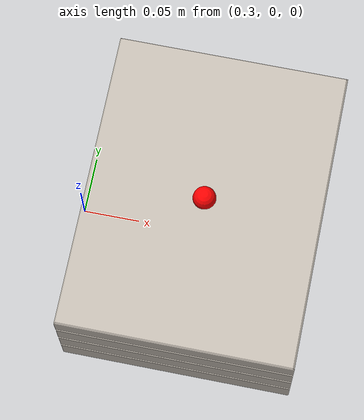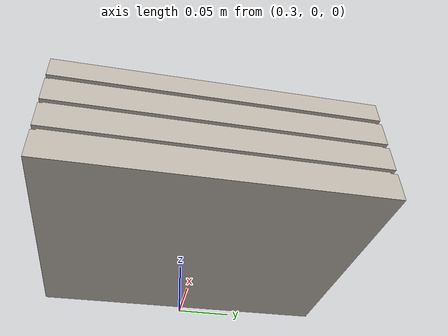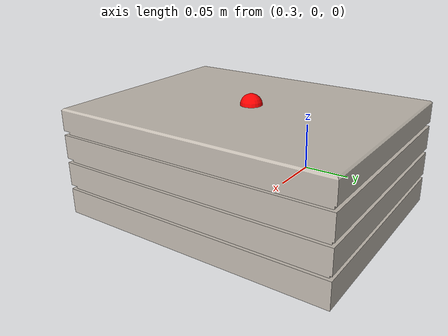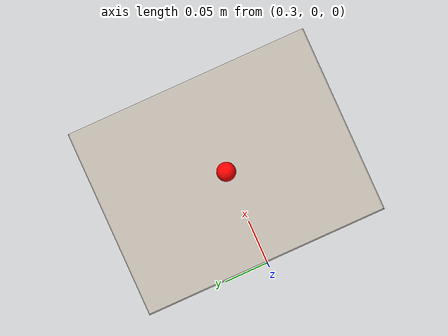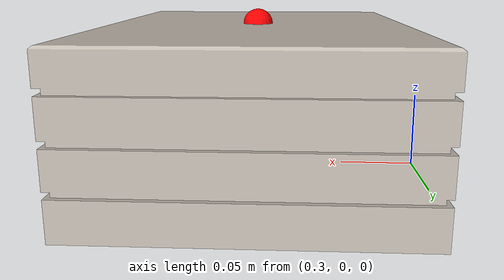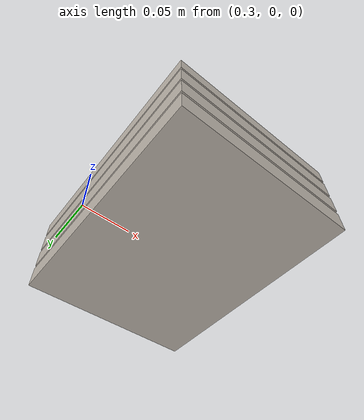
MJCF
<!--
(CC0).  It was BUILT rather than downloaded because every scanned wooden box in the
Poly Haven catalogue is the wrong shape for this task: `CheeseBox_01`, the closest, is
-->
<?xml version="1.0"?>
<mujoco model="ledge">
  <compiler angle="radian" meshdir="assets" texturedir="assets"/>

  <asset>
    <texture name="ledge_tex" type="2d" file="ledge_tex.png"/>
    <material name="ledge_mat" texture="ledge_tex" specular="0.15" shininess="0.15"/>
    <mesh name="ledge_vis" file="ledge_vis.obj"/>
  </asset>

  <worldbody>
    <body name="ledge_base" pos="0.41 0 0.0" mocap="true">
      <geom name="ledge_visual" type="mesh" mesh="ledge_vis" material="ledge_mat" contype="0" conaffinity="0" group="2" mass="0"/>
      <geom type="box" name="ledge_geom" size="0.10 0.13 0.05" pos="0 0 0.05"
            condim="3" friction="0.6 0.03 0.003" rgba="0.5 0.5 0.5 0.3" group="3"
            contype="1" conaffinity="1" solref="0.01 1"/>
      <!-- Interior reference: centre of the top surface. -->
      <site name="object_site" pos="0 0 0.10" size="0.01" rgba="1 0 0 1"/>
      <site name="base_site" pos="0 0 0.10" size="0.01" rgba="0 0 1 0.3"/>
    </body>
  </worldbody>
</mujoco>
